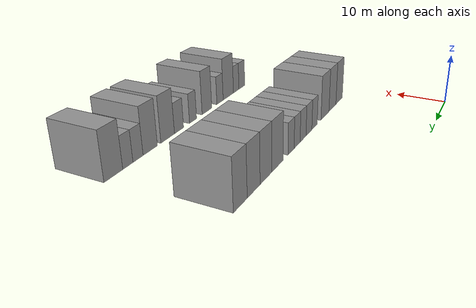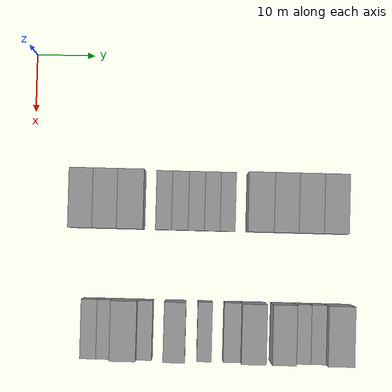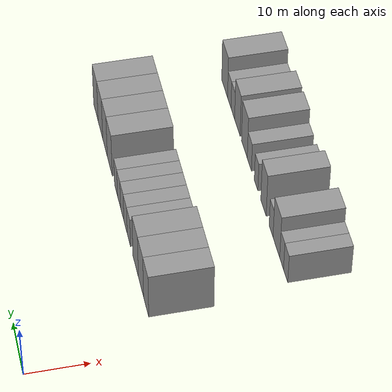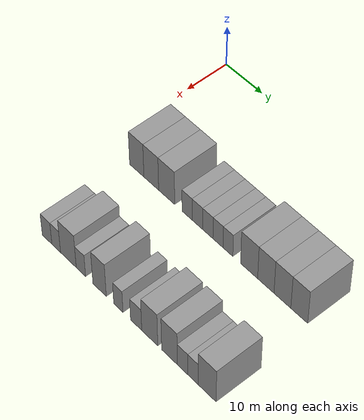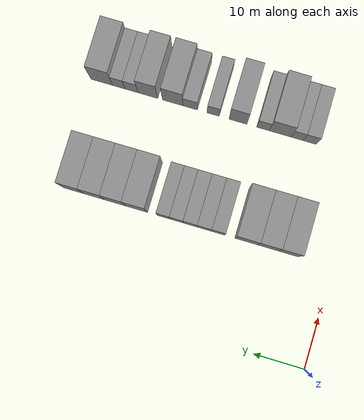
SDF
<sdf version="1.6">
 <world name="default">
  <model name="building_42">
   <static>1</static>
   <pose>25.0000 8.9445 0 0.000000 0.000000 0.000000</pose>
   <link name="link">
    <pose>0 0 4.50 0 0 0</pose>
    <collision name="collision"><geometry><box><size>10.0000 4.0104 9.0000</size></box></geometry></collision>
    <visual name="visual">
     <cast_shadows>0</cast_shadows>
     <geometry><box><size>10.0000 4.0104 9.0000</size></box></geometry>
     <material>
      <script>
       <uri>model://grey_wall/materials/scripts</uri>
       <uri>model://grey_wall/materials/textures</uri>
       <name>vrc/grey_wall</name>
      </script>
     </material>
    </visual>
   </link>
  </model>
  <model name="building_43">
   <static>1</static>
   <pose>25.0000 12.9975 0 0.000000 0.000000 0.000000</pose>
   <link name="link">
    <pose>0 0 4.50 0 0 0</pose>
    <collision name="collision"><geometry><box><size>10.0000 4.0955 9.0000</size></box></geometry></collision>
    <visual name="visual">
     <cast_shadows>0</cast_shadows>
     <geometry><box><size>10.0000 4.0955 9.0000</size></box></geometry>
     <material>
      <script>
       <uri>model://grey_wall/materials/scripts</uri>
       <uri>model://grey_wall/materials/textures</uri>
       <name>vrc/grey_wall</name>
      </script>
     </material>
    </visual>
   </link>
  </model>
  <model name="building_44">
   <static>1</static>
   <pose>25.0000 17.2449 0 0.000000 0.000000 0.000000</pose>
   <link name="link">
    <pose>0 0 4.50 0 0 0</pose>
    <collision name="collision"><geometry><box><size>10.0000 4.3993 9.0000</size></box></geometry></collision>
    <visual name="visual">
     <cast_shadows>0</cast_shadows>
     <geometry><box><size>10.0000 4.3993 9.0000</size></box></geometry>
     <material>
      <script>
       <uri>model://grey_wall/materials/scripts</uri>
       <uri>model://grey_wall/materials/textures</uri>
       <name>vrc/grey_wall</name>
      </script>
     </material>
    </visual>
   </link>
  </model>
  <model name="building_45">
   <static>1</static>
   <pose>25.0000 22.7931 0 0.000000 0.000000 0.000000</pose>
   <link name="link">
    <pose>0 0 3.00 0 0 0</pose>
    <collision name="collision"><geometry><box><size>10.0000 2.6971 6.0000</size></box></geometry></collision>
    <visual name="visual">
     <cast_shadows>0</cast_shadows>
     <geometry><box><size>10.0000 2.6971 6.0000</size></box></geometry>
     <material>
      <script>
       <uri>model://grey_wall/materials/scripts</uri>
       <uri>model://grey_wall/materials/textures</uri>
       <name>vrc/grey_wall</name>
      </script>
     </material>
    </visual>
   </link>
  </model>
  <model name="building_46">
   <static>1</static>
   <pose>25.0000 25.5501 0 0.000000 0.000000 0.000000</pose>
   <link name="link">
    <pose>0 0 3.00 0 0 0</pose>
    <collision name="collision"><geometry><box><size>10.0000 2.8170 6.0000</size></box></geometry></collision>
    <visual name="visual">
     <cast_shadows>0</cast_shadows>
     <geometry><box><size>10.0000 2.8170 6.0000</size></box></geometry>
     <material>
      <script>
       <uri>model://grey_wall/materials/scripts</uri>
       <uri>model://grey_wall/materials/textures</uri>
       <name>vrc/grey_wall</name>
      </script>
     </material>
    </visual>
   </link>
  </model>
  <model name="building_47">
   <static>1</static>
   <pose>25.0000 28.3322 0 0.000000 0.000000 0.000000</pose>
   <link name="link">
    <pose>0 0 3.00 0 0 0</pose>
    <collision name="collision"><geometry><box><size>10.0000 2.7472 6.0000</size></box></geometry></collision>
    <visual name="visual">
     <cast_shadows>0</cast_shadows>
     <geometry><box><size>10.0000 2.7472 6.0000</size></box></geometry>
     <material>
      <script>
       <uri>model://grey_wall/materials/scripts</uri>
       <uri>model://grey_wall/materials/textures</uri>
       <name>vrc/grey_wall</name>
      </script>
     </material>
    </visual>
   </link>
  </model>
  <model name="building_48">
   <static>1</static>
   <pose>25.0000 31.0269 0 0.000000 0.000000 0.000000</pose>
   <link name="link">
    <pose>0 0 3.00 0 0 0</pose>
    <collision name="collision"><geometry><box><size>10.0000 2.6422 6.0000</size></box></geometry></collision>
    <visual name="visual">
     <cast_shadows>0</cast_shadows>
     <geometry><box><size>10.0000 2.6422 6.0000</size></box></geometry>
     <material>
      <script>
       <uri>model://grey_wall/materials/scripts</uri>
       <uri>model://grey_wall/materials/textures</uri>
       <name>vrc/grey_wall</name>
      </script>
     </material>
    </visual>
   </link>
  </model>
  <model name="building_49">
   <static>1</static>
   <pose>25.0000 33.6311 0 0.000000 0.000000 0.000000</pose>
   <link name="link">
    <pose>0 0 3.00 0 0 0</pose>
    <collision name="collision"><geometry><box><size>10.0000 2.5661 6.0000</size></box></geometry></collision>
    <visual name="visual">
     <cast_shadows>0</cast_shadows>
     <geometry><box><size>10.0000 2.5661 6.0000</size></box></geometry>
     <material>
      <script>
       <uri>model://grey_wall/materials/scripts</uri>
       <uri>model://grey_wall/materials/textures</uri>
       <name>vrc/grey_wall</name>
      </script>
     </material>
    </visual>
   </link>
  </model>
  <model name="building_50">
   <static>1</static>
   <pose>25.0000 39.0998 0 0.000000 0.000000 0.000000</pose>
   <link name="link">
    <pose>0 0 4.50 0 0 0</pose>
    <collision name="collision"><geometry><box><size>10.0000 4.3714 9.0000</size></box></geometry></collision>
    <visual name="visual">
     <cast_shadows>0</cast_shadows>
     <geometry><box><size>10.0000 4.3714 9.0000</size></box></geometry>
     <material>
      <script>
       <uri>model://grey_wall/materials/scripts</uri>
       <uri>model://grey_wall/materials/textures</uri>
       <name>vrc/grey_wall</name>
      </script>
     </material>
    </visual>
   </link>
  </model>
  <model name="building_51">
   <static>1</static>
   <pose>25.0000 43.3485 0 0.000000 0.000000 0.000000</pose>
   <link name="link">
    <pose>0 0 4.50 0 0 0</pose>
    <collision name="collision"><geometry><box><size>10.0000 4.1260 9.0000</size></box></geometry></collision>
    <visual name="visual">
     <cast_shadows>0</cast_shadows>
     <geometry><box><size>10.0000 4.1260 9.0000</size></box></geometry>
     <material>
      <script>
       <uri>model://grey_wall/materials/scripts</uri>
       <uri>model://grey_wall/materials/textures</uri>
       <name>vrc/grey_wall</name>
      </script>
     </material>
    </visual>
   </link>
  </model>
  <model name="building_52">
   <static>1</static>
   <pose>25.0000 47.5089 0 0.000000 0.000000 0.000000</pose>
   <link name="link">
    <pose>0 0 4.50 0 0 0</pose>
    <collision name="collision"><geometry><box><size>10.0000 4.1948 9.0000</size></box></geometry></collision>
    <visual name="visual">
     <cast_shadows>0</cast_shadows>
     <geometry><box><size>10.0000 4.1948 9.0000</size></box></geometry>
     <material>
      <script>
       <uri>model://grey_wall/materials/scripts</uri>
       <uri>model://grey_wall/materials/textures</uri>
       <name>vrc/grey_wall</name>
      </script>
     </material>
    </visual>
   </link>
  </model>
  <model name="building_53">
   <static>1</static>
   <pose>25.0000 51.6875 0 0.000000 0.000000 0.000000</pose>
   <link name="link">
    <pose>0 0 4.50 0 0 0</pose>
    <collision name="collision"><geometry><box><size>10.0000 4.1624 9.0000</size></box></geometry></collision>
    <visual name="visual">
     <cast_shadows>0</cast_shadows>
     <geometry><box><size>10.0000 4.1624 9.0000</size></box></geometry>
     <material>
      <script>
       <uri>model://grey_wall/materials/scripts</uri>
       <uri>model://grey_wall/materials/textures</uri>
       <name>vrc/grey_wall</name>
      </script>
     </material>
    </visual>
   </link>
  </model>
  <model name="building_142">
   <static>1</static>
   <pose>47.0000 10.6283 0 0.000000 0.000000 0.000000</pose>
   <link name="link">
    <pose>0 0 3.00 0 0 0</pose>
    <collision name="collision"><geometry><box><size>10.0000 2.7068 6.0000</size></box></geometry></collision>
    <visual name="visual">
     <cast_shadows>0</cast_shadows>
     <geometry><box><size>10.0000 2.7068 6.0000</size></box></geometry>
     <material>
      <script>
       <uri>model://grey_wall/materials/scripts</uri>
       <uri>model://grey_wall/materials/textures</uri>
       <name>vrc/grey_wall</name>
      </script>
     </material>
    </visual>
   </link>
  </model>
  <model name="building_143">
   <static>1</static>
   <pose>47.0000 13.2009 0 0.000000 0.000000 0.000000</pose>
   <link name="link">
    <pose>0 0 3.00 0 0 0</pose>
    <collision name="collision"><geometry><box><size>10.0000 2.4383 6.0000</size></box></geometry></collision>
    <visual name="visual">
     <cast_shadows>0</cast_shadows>
     <geometry><box><size>10.0000 2.4383 6.0000</size></box></geometry>
     <material>
      <script>
       <uri>model://grey_wall/materials/scripts</uri>
       <uri>model://grey_wall/materials/textures</uri>
       <name>vrc/grey_wall</name>
      </script>
     </material>
    </visual>
   </link>
  </model>
  <model name="building_144">
   <static>1</static>
   <pose>47.0000 16.6026 0 0.000000 0.000000 0.000000</pose>
   <link name="link">
    <pose>0 0 4.50 0 0 0</pose>
    <collision name="collision"><geometry><box><size>10.0000 4.3652 9.0000</size></box></geometry></collision>
    <visual name="visual">
     <cast_shadows>0</cast_shadows>
     <geometry><box><size>10.0000 4.3652 9.0000</size></box></geometry>
     <material>
      <script>
       <uri>model://grey_wall/materials/scripts</uri>
       <uri>model://grey_wall/materials/textures</uri>
       <name>vrc/grey_wall</name>
      </script>
     </material>
    </visual>
   </link>
  </model>
  <model name="building_145">
   <static>1</static>
   <pose>47.0000 20.0640 0 0.000000 0.000000 0.000000</pose>
   <link name="link">
    <pose>0 0 3.00 0 0 0</pose>
    <collision name="collision"><geometry><box><size>10.0000 2.5575 6.0000</size></box></geometry></collision>
    <visual name="visual">
     <cast_shadows>0</cast_shadows>
     <geometry><box><size>10.0000 2.5575 6.0000</size></box></geometry>
     <material>
      <script>
       <uri>model://grey_wall/materials/scripts</uri>
       <uri>model://grey_wall/materials/textures</uri>
       <name>vrc/grey_wall</name>
      </script>
     </material>
    </visual>
   </link>
  </model>
  <model name="building_146">
   <static>1</static>
   <pose>47.0000 25.1513 0 0.000000 0.000000 0.000000</pose>
   <link name="link">
    <pose>0 0 4.50 0 0 0</pose>
    <collision name="collision"><geometry><box><size>10.0000 3.6171 9.0000</size></box></geometry></collision>
    <visual name="visual">
     <cast_shadows>0</cast_shadows>
     <geometry><box><size>10.0000 3.6171 9.0000</size></box></geometry>
     <material>
      <script>
       <uri>model://grey_wall/materials/scripts</uri>
       <uri>model://grey_wall/materials/textures</uri>
       <name>vrc/grey_wall</name>
      </script>
     </material>
    </visual>
   </link>
  </model>
  <model name="building_147">
   <static>1</static>
   <pose>47.0000 30.1877 0 0.000000 0.000000 0.000000</pose>
   <link name="link">
    <pose>0 0 3.00 0 0 0</pose>
    <collision name="collision"><geometry><box><size>10.0000 2.4557 6.0000</size></box></geometry></collision>
    <visual name="visual">
     <cast_shadows>0</cast_shadows>
     <geometry><box><size>10.0000 2.4557 6.0000</size></box></geometry>
     <material>
      <script>
       <uri>model://grey_wall/materials/scripts</uri>
       <uri>model://grey_wall/materials/textures</uri>
       <name>vrc/grey_wall</name>
      </script>
     </material>
    </visual>
   </link>
  </model>
  <model name="building_148">
   <static>1</static>
   <pose>47.0000 34.8791 0 0.000000 0.000000 0.000000</pose>
   <link name="link">
    <pose>0 0 3.00 0 0 0</pose>
    <collision name="collision"><geometry><box><size>10.0000 2.9271 6.0000</size></box></geometry></collision>
    <visual name="visual">
     <cast_shadows>0</cast_shadows>
     <geometry><box><size>10.0000 2.9271 6.0000</size></box></geometry>
     <material>
      <script>
       <uri>model://grey_wall/materials/scripts</uri>
       <uri>model://grey_wall/materials/textures</uri>
       <name>vrc/grey_wall</name>
      </script>
     </material>
    </visual>
   </link>
  </model>
  <model name="building_149">
   <static>1</static>
   <pose>47.0000 38.4181 0 0.000000 0.000000 0.000000</pose>
   <link name="link">
    <pose>0 0 4.50 0 0 0</pose>
    <collision name="collision"><geometry><box><size>10.0000 4.1508 9.0000</size></box></geometry></collision>
    <visual name="visual">
     <cast_shadows>0</cast_shadows>
     <geometry><box><size>10.0000 4.1508 9.0000</size></box></geometry>
     <material>
      <script>
       <uri>model://grey_wall/materials/scripts</uri>
       <uri>model://grey_wall/materials/textures</uri>
       <name>vrc/grey_wall</name>
      </script>
     </material>
    </visual>
   </link>
  </model>
  <model name="building_150">
   <static>1</static>
   <pose>47.0000 43.4911 0 0.000000 0.000000 0.000000</pose>
   <link name="link">
    <pose>0 0 4.50 0 0 0</pose>
    <collision name="collision"><geometry><box><size>10.0000 3.9951 9.0000</size></box></geometry></collision>
    <visual name="visual">
     <cast_shadows>0</cast_shadows>
     <geometry><box><size>10.0000 3.9951 9.0000</size></box></geometry>
     <material>
      <script>
       <uri>model://grey_wall/materials/scripts</uri>
       <uri>model://grey_wall/materials/textures</uri>
       <name>vrc/grey_wall</name>
      </script>
     </material>
    </visual>
   </link>
  </model>
  <model name="building_151">
   <static>1</static>
   <pose>47.0000 46.8173 0 0.000000 0.000000 0.000000</pose>
   <link name="link">
    <pose>0 0 3.00 0 0 0</pose>
    <collision name="collision"><geometry><box><size>10.0000 2.6574 6.0000</size></box></geometry></collision>
    <visual name="visual">
     <cast_shadows>0</cast_shadows>
     <geometry><box><size>10.0000 2.6574 6.0000</size></box></geometry>
     <material>
      <script>
       <uri>model://grey_wall/materials/scripts</uri>
       <uri>model://grey_wall/materials/textures</uri>
       <name>vrc/grey_wall</name>
      </script>
     </material>
    </visual>
   </link>
  </model>
  <model name="building_152">
   <static>1</static>
   <pose>47.0000 49.4257 0 0.000000 0.000000 0.000000</pose>
   <link name="link">
    <pose>0 0 3.00 0 0 0</pose>
    <collision name="collision"><geometry><box><size>10.0000 2.5595 6.0000</size></box></geometry></collision>
    <visual name="visual">
     <cast_shadows>0</cast_shadows>
     <geometry><box><size>10.0000 2.5595 6.0000</size></box></geometry>
     <material>
      <script>
       <uri>model://grey_wall/materials/scripts</uri>
       <uri>model://grey_wall/materials/textures</uri>
       <name>vrc/grey_wall</name>
      </script>
     </material>
    </visual>
   </link>
  </model>
  <model name="building_153">
   <static>1</static>
   <pose>47.0000 52.9204 0 0.000000 0.000000 0.000000</pose>
   <link name="link">
    <pose>0 0 4.50 0 0 0</pose>
    <collision name="collision"><geometry><box><size>10.0000 4.4298 9.0000</size></box></geometry></collision>
    <visual name="visual">
     <cast_shadows>0</cast_shadows>
     <geometry><box><size>10.0000 4.4298 9.0000</size></box></geometry>
     <material>
      <script>
       <uri>model://grey_wall/materials/scripts</uri>
       <uri>model://grey_wall/materials/textures</uri>
       <name>vrc/grey_wall</name>
      </script>
     </material>
    </visual>
   </link>
  </model>
 </world>
</sdf>
